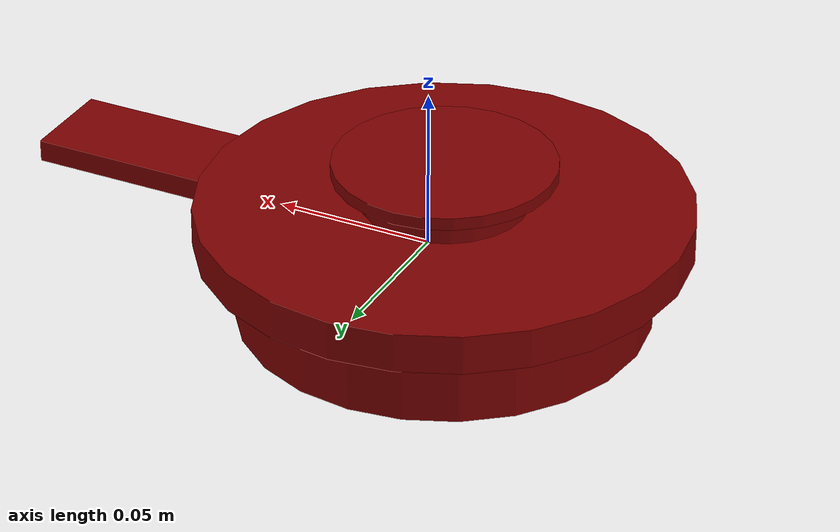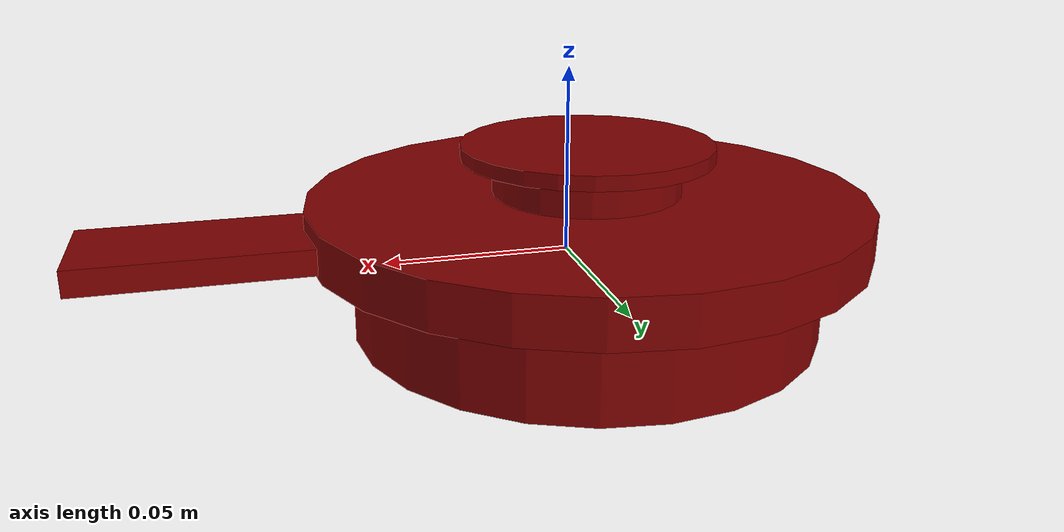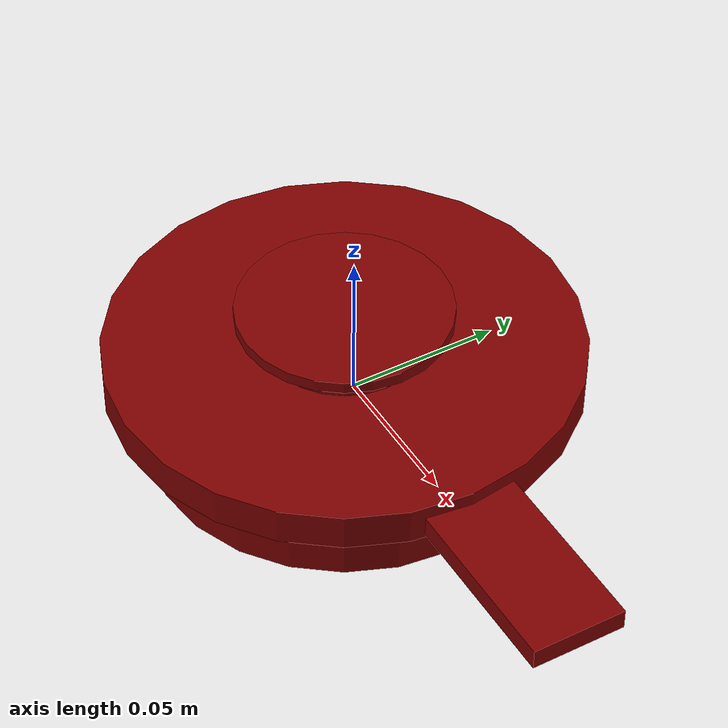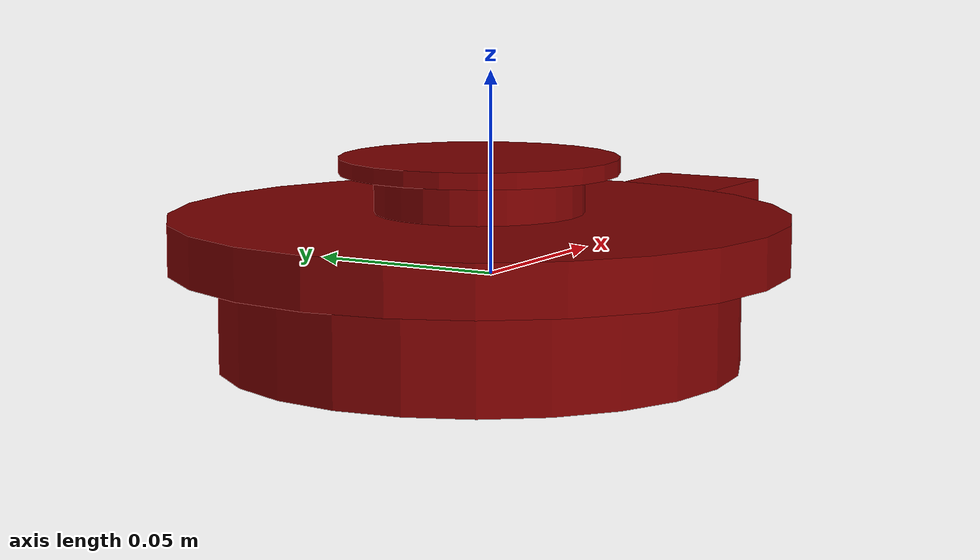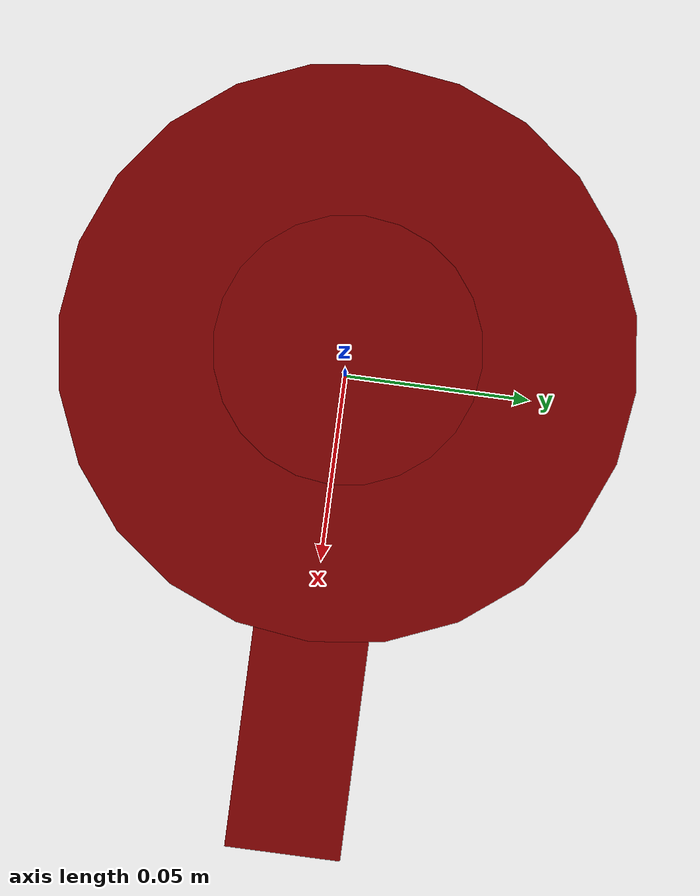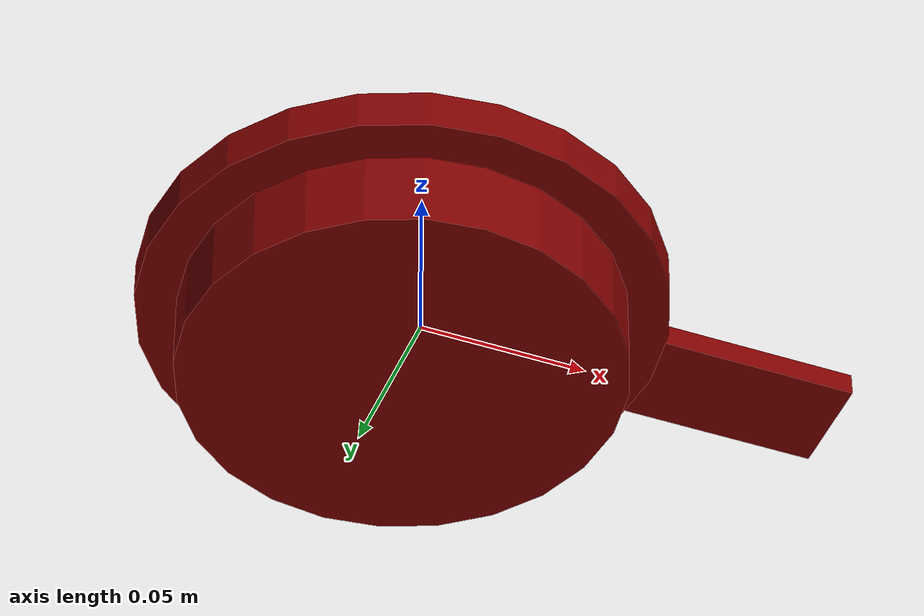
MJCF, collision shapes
<mujoco model="model">
  <option timestep="0.002" gravity="0.0 0.0 -9.81"/>
  <compiler angle="radian"/>
  <asset>
    <texture file="visuals/T_BC001.png" name="lid_material" type="2d"/>
    <material name="lid_material" rgba="1 1 1 1.0" texture="lid_material" shininess="0.141421377658844" specular="0.3103448502657381"/>
    <mesh file="visuals/lid.obj" name="lid_vis"/>
  </asset>
  <default>
    <default class="visual">
      <geom conaffinity="0" contype="0" group="1" type="mesh"/>
    </default>
    <default class="collision">
      <geom group="0" rgba="0.5 0 0 0.5"/>
    </default>
    <default class="spawn">
      <geom group="0" rgba="1 1 1 0.5" contype="0" conaffinity="0"/>
      <site group="0" rgba="1 1 1 0.5"/>
    </default>
    <default class="region">
      <geom group="1" conaffinity="0" contype="0" rgba="0 1 0 0"/>
    </default>
  </default>
  <worldbody>
    <body>
      <body name="object">
        <geom mesh="lid_vis" type="mesh" solimp="0.998 0.998 0.001" solref="0.001 1" friction="0.95 0.3 0.1" class="visual" material="lid_material"/>
        <geom class="collision" type="cylinder" pos="-0.005542231908313832 -6.381662484856825e-05 0.009146134883702" size="0.07600142806768417 0.006195507012307644" quat="1.0 0.0 0.0 0.0" density="1000.0"/>
        <geom class="collision" type="cylinder" pos="-0.005542231908313832 -6.381662484856825e-05 -0.009434125116297987" size="0.06399042159318924 0.011746169999241829" quat="1.0 0.0 0.0 0.0" density="1000.0"/>
        <geom class="collision" type="cylinder" pos="-0.005542231908313832 -6.381662484856825e-05 0.027524924883702007" size="0.03432024270296097 0.0019606673158705235" quat="1.0 0.0 0.0 0.0" density="1000.0"/>
        <geom class="collision" type="box" pos="0.09591398809168616 7.349337515143162e-05 0.007425554883702001" size="0.03143944963812828 0.015363558195531368 0.003451445372775197" quat="1.0 0.0 0.0 0.0" density="1000.0"/>
        <geom class="collision" name="handle_main" type="cylinder" pos="-0.005542231908313832 -6.381662484856825e-05 0.020942314883702018" size="0.02572418749332428 0.00496209692209959" quat="1.0 0.0 0.0 0.0" density="1000.0"/>
        <geom class="region" name="reg_main" density="0" type="box" pos="0.023445880000000002 -1.0999999999969368e-06 0.004605509999999998" size="0.1044825 0.07544999999999999 0.0264055"/>
      </body>
    </body>
  </worldbody>
</mujoco>
